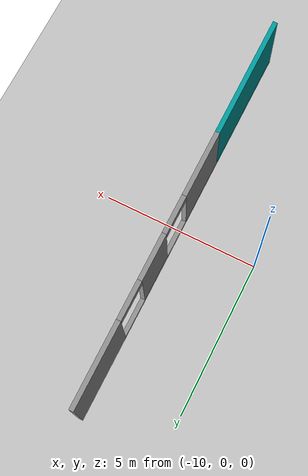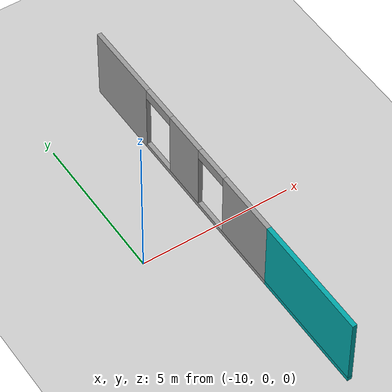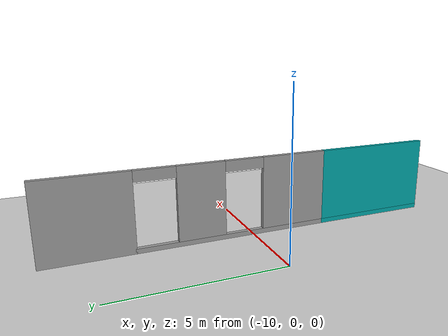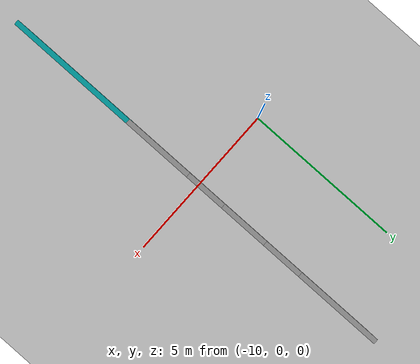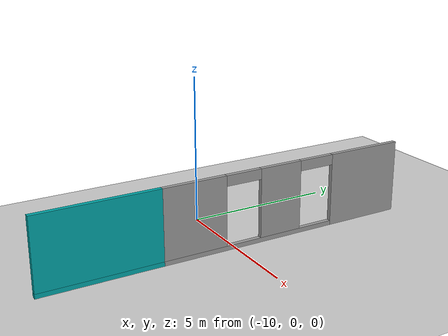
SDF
<sdf version="1.7">
 <world name="default">
  <model name="ground_plane">
   <static>1</static>
   <link name="link">
    <collision name="collision">
     <geometry><plane><normal>0 0 1</normal><size>100 100</size></plane></geometry>
     <surface>
      <contact><collide_bitmask>65535</collide_bitmask></contact>
      <friction><ode><mu>100</mu><mu2>50</mu2></ode></friction>
     </surface>
    </collision>
    <visual name="visual">
     <cast_shadows>0</cast_shadows>
     <geometry><plane><normal>0 0 1</normal><size>100 100</size></plane></geometry>
     <material>
      <script><uri>file://media/materials/scripts/gazebo.material</uri><name>Gazebo/Grey</name></script>
     </material>
    </visual>
   </link>
  </model>
  <model name="my_building_p4">
   <link name="Wall_28">
    <pose>-7.42497 -2.95624 0 0 0 -1.5708</pose>
    <inertial>
     <mass>1</mass>
     <inertia><ixx>1</ixx><ixy>0</ixy><ixz>0</ixz><iyy>1</iyy><iyz>0</iyz><izz>1</izz></inertia>
    </inertial>
    <visual name="Wall_28_Visual_3">
     <pose>4.5 0 1.325 0 -0 0</pose>
     <geometry><box><size>4 0.15 2.35</size></box></geometry>
     <material>
      <script><uri>file://media/materials/scripts/gazebo.material</uri><name>Gazebo/Grey</name></script>
      <ambient>0 0.647 0.655 1</ambient>
      <shader type="pixel"><normal_map>__default__</normal_map></shader>
      <diffuse>0 0.647 0.655 1</diffuse>
      <specular>0.01 0.01 0.01 1</specular>
      <emissive>0 0 0 1</emissive>
     </material>
     <meta><layer>0</layer></meta>
    </visual>
    <visual name="Wall_28_Visual_2">
     <pose>4.5 0 0.075 0 -0 0</pose>
     <geometry><box><size>4 0.15 0.15</size></box></geometry>
     <material>
      <script><uri>file://media/materials/scripts/gazebo.material</uri><name>Gazebo/Grey</name></script>
      <ambient>0 0.647 0.655 1</ambient>
      <shader type="pixel"><normal_map>__default__</normal_map></shader>
      <diffuse>0 0.647 0.655 1</diffuse>
      <specular>0.01 0.01 0.01 1</specular>
      <emissive>0 0 0 1</emissive>
     </material>
     <meta><layer>0</layer></meta>
    </visual>
    <visual name="Wall_28_Visual_1">
     <pose>-0.6 0 0.075 0 -0 0</pose>
     <geometry><box><size>6.2 0.15 0.15</size></box></geometry>
     <material>
      <script><uri>file://media/materials/scripts/gazebo.material</uri><name>Gazebo/Grey</name></script>
      <ambient>1 1 1 1</ambient>
      <shader type="pixel"><normal_map>__default__</normal_map></shader>
      <diffuse>0.7 0.7 0.7 1</diffuse>
      <specular>0.01 0.01 0.01 1</specular>
      <emissive>0 0 0 1</emissive>
     </material>
     <meta><layer>0</layer></meta>
    </visual>
    <visual name="Wall_28_Visual_5">
     <pose>-1.663 0 1.325 0 -0 0</pose>
     <geometry><box><size>1.5 0.15 2.35</size></box></geometry>
     <material>
      <script><uri>file://media/materials/scripts/gazebo.material</uri><name>Gazebo/Grey</name></script>
      <ambient>1 1 1 1</ambient>
      <shader type="pixel"><normal_map>__default__</normal_map></shader>
      <diffuse>0.7 0.7 0.7 1</diffuse>
      <specular>0.01 0.01 0.01 1</specular>
      <emissive>0 0 0 1</emissive>
     </material>
     <meta><layer>0</layer></meta>
    </visual>
    <visual name="Wall_28_Visual_8">
     <pose>-3.038 0 2.325 0 -0 0</pose>
     <geometry><box><size>1.25 0.15 0.35</size></box></geometry>
     <material>
      <script><uri>file://media/materials/scripts/gazebo.material</uri><name>Gazebo/Grey</name></script>
      <ambient>1 1 1 1</ambient>
      <shader type="pixel"><normal_map>__default__</normal_map></shader>
      <diffuse>0.7 0.7 0.7 1</diffuse>
      <specular>0.01 0.01 0.01 1</specular>
      <emissive>0 0 0 1</emissive>
     </material>
     <meta><layer>0</layer></meta>
    </visual>
    <visual name="Wall_28_Visual_0">
     <pose>-5.012 0 1.25 0 -0 0</pose>
     <geometry><box><size>2.7 0.15 2.5</size></box></geometry>
     <material>
      <script><uri>file://media/materials/scripts/gazebo.material</uri><name>Gazebo/Grey</name></script>
      <ambient>1 1 1 1</ambient>
      <shader type="pixel"><normal_map>__default__</normal_map></shader>
      <diffuse>0.7 0.7 0.7 1</diffuse>
      <specular>0.01 0.01 0.01 1</specular>
      <emissive>0 0 0 1</emissive>
     </material>
     <meta><layer>0</layer></meta>
    </visual>
    <visual name="Wall_28_Visual_6">
     <pose>-0.288 0 2.325 0 -0 0</pose>
     <geometry><box><size>1.25 0.15 0.35</size></box></geometry>
     <material>
      <script><uri>file://media/materials/scripts/gazebo.material</uri><name>Gazebo/Grey</name></script>
      <ambient>1 1 1 1</ambient>
      <shader type="pixel"><normal_map>__default__</normal_map></shader>
      <diffuse>0.7 0.7 0.7 1</diffuse>
      <specular>0.01 0.01 0.01 1</specular>
      <emissive>0 0 0 1</emissive>
     </material>
     <meta><layer>0</layer></meta>
    </visual>
    <collision name="Wall_28_Collision_6">
     <pose>-0.288 0 2.325 0 -0 0</pose>
     <geometry><box><size>1.25 0.15 0.35</size></box></geometry>
     <surface>
      <friction>
       <ode><mu>1</mu><mu2>1</mu2><fdir1>0 0 0</fdir1><slip1>0</slip1><slip2>0</slip2></ode>
       <torsional>
        <coefficient>1</coefficient>
        <patch_radius>0</patch_radius>
        <surface_radius>0</surface_radius>
        <use_patch_radius>1</use_patch_radius>
        <ode><slip>0</slip></ode>
       </torsional>
      </friction>
      <bounce><restitution_coefficient>0</restitution_coefficient><threshold>1e+06</threshold></bounce>
      <contact>
       <collide_without_contact>0</collide_without_contact>
       <collide_without_contact_bitmask>1</collide_without_contact_bitmask>
       <collide_bitmask>1</collide_bitmask>
       <ode>
        <soft_cfm>0</soft_cfm>
        <soft_erp>0.2</soft_erp>
        <kp>1e+13</kp>
        <kd>1</kd>
        <max_vel>0.01</max_vel>
        <min_depth>0</min_depth>
       </ode>
       <bullet>
        <split_impulse>1</split_impulse>
        <split_impulse_penetration_threshold>-0.01</split_impulse_penetration_threshold>
        <soft_cfm>0</soft_cfm>
        <soft_erp>0.2</soft_erp>
        <kp>1e+13</kp>
        <kd>1</kd>
       </bullet>
      </contact>
     </surface>
    </collision>
    <collision name="Wall_28_Collision_8">
     <pose>-3.038 0 2.325 0 -0 0</pose>
     <geometry><box><size>1.25 0.15 0.35</size></box></geometry>
     <surface>
      <friction>
       <ode><mu>1</mu><mu2>1</mu2><fdir1>0 0 0</fdir1><slip1>0</slip1><slip2>0</slip2></ode>
       <torsional>
        <coefficient>1</coefficient>
        <patch_radius>0</patch_radius>
        <surface_radius>0</surface_radius>
        <use_patch_radius>1</use_patch_radius>
        <ode><slip>0</slip></ode>
       </torsional>
      </friction>
      <bounce><restitution_coefficient>0</restitution_coefficient><threshold>1e+06</threshold></bounce>
      <contact>
       <collide_without_contact>0</collide_without_contact>
       <collide_without_contact_bitmask>1</collide_without_contact_bitmask>
       <collide_bitmask>1</collide_bitmask>
       <ode>
        <soft_cfm>0</soft_cfm>
        <soft_erp>0.2</soft_erp>
        <kp>1e+13</kp>
        <kd>1</kd>
        <max_vel>0.01</max_vel>
        <min_depth>0</min_depth>
       </ode>
       <bullet>
        <split_impulse>1</split_impulse>
        <split_impulse_penetration_threshold>-0.01</split_impulse_penetration_threshold>
        <soft_cfm>0</soft_cfm>
        <soft_erp>0.2</soft_erp>
        <kp>1e+13</kp>
        <kd>1</kd>
       </bullet>
      </contact>
     </surface>
    </collision>
    <collision name="Wall_28_Collision_0">
     <pose>-5.012 0 1.25 0 -0 0</pose>
     <geometry><box><size>2.7 0.15 2.5</size></box></geometry>
     <surface>
      <friction>
       <ode><mu>1</mu><mu2>1</mu2><fdir1>0 0 0</fdir1><slip1>0</slip1><slip2>0</slip2></ode>
       <torsional>
        <coefficient>1</coefficient>
        <patch_radius>0</patch_radius>
        <surface_radius>0</surface_radius>
        <use_patch_radius>1</use_patch_radius>
        <ode><slip>0</slip></ode>
       </torsional>
      </friction>
      <bounce><restitution_coefficient>0</restitution_coefficient><threshold>1e+06</threshold></bounce>
      <contact>
       <collide_without_contact>0</collide_without_contact>
       <collide_without_contact_bitmask>1</collide_without_contact_bitmask>
       <collide_bitmask>1</collide_bitmask>
       <ode>
        <soft_cfm>0</soft_cfm>
        <soft_erp>0.2</soft_erp>
        <kp>1e+13</kp>
        <kd>1</kd>
        <max_vel>0.01</max_vel>
        <min_depth>0</min_depth>
       </ode>
       <bullet>
        <split_impulse>1</split_impulse>
        <split_impulse_penetration_threshold>-0.01</split_impulse_penetration_threshold>
        <soft_cfm>0</soft_cfm>
        <soft_erp>0.2</soft_erp>
        <kp>1e+13</kp>
        <kd>1</kd>
       </bullet>
      </contact>
     </surface>
    </collision>
    <collision name="Wall_28_Collision_1">
     <pose>-0.6 0 0.075 0 -0 0</pose>
     <geometry><box><size>6.2 0.15 0.15</size></box></geometry>
     <surface>
      <friction>
       <ode><mu>1</mu><mu2>1</mu2><fdir1>0 0 0</fdir1><slip1>0</slip1><slip2>0</slip2></ode>
       <torsional>
        <coefficient>1</coefficient>
        <patch_radius>0</patch_radius>
        <surface_radius>0</surface_radius>
        <use_patch_radius>1</use_patch_radius>
        <ode><slip>0</slip></ode>
       </torsional>
      </friction>
      <bounce><restitution_coefficient>0</restitution_coefficient><threshold>1e+06</threshold></bounce>
      <contact>
       <collide_without_contact>0</collide_without_contact>
       <collide_without_contact_bitmask>1</collide_without_contact_bitmask>
       <collide_bitmask>1</collide_bitmask>
       <ode>
        <soft_cfm>0</soft_cfm>
        <soft_erp>0.2</soft_erp>
        <kp>1e+13</kp>
        <kd>1</kd>
        <max_vel>0.01</max_vel>
        <min_depth>0</min_depth>
       </ode>
       <bullet>
        <split_impulse>1</split_impulse>
        <split_impulse_penetration_threshold>-0.01</split_impulse_penetration_threshold>
        <soft_cfm>0</soft_cfm>
        <soft_erp>0.2</soft_erp>
        <kp>1e+13</kp>
        <kd>1</kd>
       </bullet>
      </contact>
     </surface>
    </collision>
    <collision name="Wall_28_Collision_3">
     <pose>4.5 0 1.325 0 -0 0</pose>
     <geometry><box><size>4 0.15 2.35</size></box></geometry>
     <surface>
      <friction>
       <ode><mu>1</mu><mu2>1</mu2><fdir1>0 0 0</fdir1><slip1>0</slip1><slip2>0</slip2></ode>
       <torsional>
        <coefficient>1</coefficient>
        <patch_radius>0</patch_radius>
        <surface_radius>0</surface_radius>
        <use_patch_radius>1</use_patch_radius>
        <ode><slip>0</slip></ode>
       </torsional>
      </friction>
      <bounce><restitution_coefficient>0</restitution_coefficient><threshold>1e+06</threshold></bounce>
      <contact>
       <collide_without_contact>0</collide_without_contact>
       <collide_without_contact_bitmask>1</collide_without_contact_bitmask>
       <collide_bitmask>1</collide_bitmask>
       <ode>
        <soft_cfm>0</soft_cfm>
        <soft_erp>0.2</soft_erp>
        <kp>1e+13</kp>
        <kd>1</kd>
        <max_vel>0.01</max_vel>
        <min_depth>0</min_depth>
       </ode>
       <bullet>
        <split_impulse>1</split_impulse>
        <split_impulse_penetration_threshold>-0.01</split_impulse_penetration_threshold>
        <soft_cfm>0</soft_cfm>
        <soft_erp>0.2</soft_erp>
        <kp>1e+13</kp>
        <kd>1</kd>
       </bullet>
      </contact>
     </surface>
    </collision>
    <collision name="Wall_28_Collision_5">
     <pose>-1.663 0 1.325 0 -0 0</pose>
     <geometry><box><size>1.5 0.15 2.35</size></box></geometry>
     <surface>
      <friction>
       <ode><mu>1</mu><mu2>1</mu2><fdir1>0 0 0</fdir1><slip1>0</slip1><slip2>0</slip2></ode>
       <torsional>
        <coefficient>1</coefficient>
        <patch_radius>0</patch_radius>
        <surface_radius>0</surface_radius>
        <use_patch_radius>1</use_patch_radius>
        <ode><slip>0</slip></ode>
       </torsional>
      </friction>
      <bounce><restitution_coefficient>0</restitution_coefficient><threshold>1e+06</threshold></bounce>
      <contact>
       <collide_without_contact>0</collide_without_contact>
       <collide_without_contact_bitmask>1</collide_without_contact_bitmask>
       <collide_bitmask>1</collide_bitmask>
       <ode>
        <soft_cfm>0</soft_cfm>
        <soft_erp>0.2</soft_erp>
        <kp>1e+13</kp>
        <kd>1</kd>
        <max_vel>0.01</max_vel>
        <min_depth>0</min_depth>
       </ode>
       <bullet>
        <split_impulse>1</split_impulse>
        <split_impulse_penetration_threshold>-0.01</split_impulse_penetration_threshold>
        <soft_cfm>0</soft_cfm>
        <soft_erp>0.2</soft_erp>
        <kp>1e+13</kp>
        <kd>1</kd>
       </bullet>
      </contact>
     </surface>
    </collision>
    <collision name="Wall_28_Collision_2">
     <pose>4.5 0 0.075 0 -0 0</pose>
     <geometry><box><size>4 0.15 0.15</size></box></geometry>
     <surface>
      <friction>
       <ode><mu>1</mu><mu2>1</mu2><fdir1>0 0 0</fdir1><slip1>0</slip1><slip2>0</slip2></ode>
       <torsional>
        <coefficient>1</coefficient>
        <patch_radius>0</patch_radius>
        <surface_radius>0</surface_radius>
        <use_patch_radius>1</use_patch_radius>
        <ode><slip>0</slip></ode>
       </torsional>
      </friction>
      <bounce><restitution_coefficient>0</restitution_coefficient><threshold>1e+06</threshold></bounce>
      <contact>
       <collide_without_contact>0</collide_without_contact>
       <collide_without_contact_bitmask>1</collide_without_contact_bitmask>
       <collide_bitmask>1</collide_bitmask>
       <ode>
        <soft_cfm>0</soft_cfm>
        <soft_erp>0.2</soft_erp>
        <kp>1e+13</kp>
        <kd>1</kd>
        <max_vel>0.01</max_vel>
        <min_depth>0</min_depth>
       </ode>
       <bullet>
        <split_impulse>1</split_impulse>
        <split_impulse_penetration_threshold>-0.01</split_impulse_penetration_threshold>
        <soft_cfm>0</soft_cfm>
        <soft_erp>0.2</soft_erp>
        <kp>1e+13</kp>
        <kd>1</kd>
       </bullet>
      </contact>
     </surface>
    </collision>
   </link>
   <link name="Wall_28_clone">
    <pose>-7.42533 -5.43108 0 0 0 -1.5708</pose>
    <inertial>
     <mass>1</mass>
     <inertia><ixx>1</ixx><ixy>0</ixy><ixz>0</ixz><iyy>1</iyy><iyz>0</iyz><izz>1</izz></inertia>
    </inertial>
    <visual name="Wall_28_Visual_5">
     <pose>-1.058 0 1.325 0 -0 0</pose>
     <geometry><box><size>2.16667 0.15 2.35</size></box></geometry>
     <material>
      <script><uri>file://media/materials/scripts/gazebo.material</uri><name>Gazebo/Grey</name></script>
      <ambient>1 1 1 1</ambient>
      <shader type="pixel"><normal_map>__default__</normal_map></shader>
      <diffuse>0.7 0.7 0.7 1</diffuse>
      <specular>0.01 0.01 0.01 1</specular>
      <emissive>0 0 0 1</emissive>
     </material>
     <meta><layer>0</layer></meta>
    </visual>
    <collision name="Wall_28_Collision_5">
     <pose>-1.058 0 1.325 0 -0 0</pose>
     <geometry><box><size>2.16667 0.15 2.35</size></box></geometry>
     <surface>
      <friction>
       <ode><mu>1</mu><mu2>1</mu2><fdir1>0 0 0</fdir1><slip1>0</slip1><slip2>0</slip2></ode>
       <torsional>
        <coefficient>1</coefficient>
        <patch_radius>0</patch_radius>
        <surface_radius>0</surface_radius>
        <use_patch_radius>1</use_patch_radius>
        <ode><slip>0</slip></ode>
       </torsional>
      </friction>
      <bounce><restitution_coefficient>0</restitution_coefficient><threshold>1e+06</threshold></bounce>
      <contact>
       <collide_without_contact>0</collide_without_contact>
       <collide_without_contact_bitmask>1</collide_without_contact_bitmask>
       <collide_bitmask>1</collide_bitmask>
       <ode>
        <soft_cfm>0</soft_cfm>
        <soft_erp>0.2</soft_erp>
        <kp>1e+13</kp>
        <kd>1</kd>
        <max_vel>0.01</max_vel>
        <min_depth>0</min_depth>
       </ode>
       <bullet>
        <split_impulse>1</split_impulse>
        <split_impulse_penetration_threshold>-0.01</split_impulse_penetration_threshold>
        <soft_cfm>0</soft_cfm>
        <soft_erp>0.2</soft_erp>
        <kp>1e+13</kp>
        <kd>1</kd>
       </bullet>
      </contact>
     </surface>
    </collision>
   </link>
   <static>1</static>
   <pose>-0.017657 2.964 0 0 -0 0</pose>
  </model>
 </world>
</sdf>
